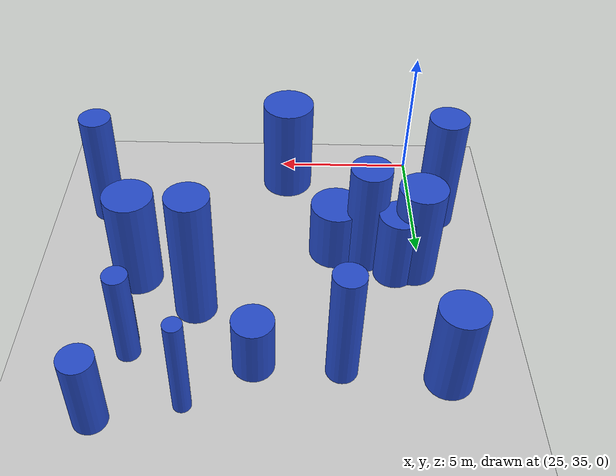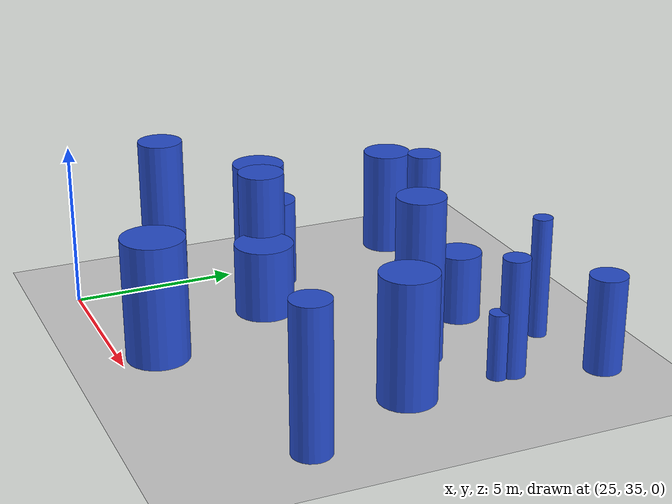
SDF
<sdf version="1.6">
 <world name="default">
  <model name="ground_plane">
   <static>1</static>
   <link name="link">
    <collision name="collision">
     <geometry><plane><normal>0 0 1</normal><size>100 100</size></plane></geometry>
     <surface><friction><ode><mu>100</mu><mu2>50</mu2></ode></friction></surface>
    </collision>
    <visual name="visual">
     <cast_shadows>0</cast_shadows>
     <geometry><plane><normal>0 0 1</normal><size>100 100</size></plane></geometry>
     <material>
      <script><uri>file://media/materials/scripts/gazebo.material</uri><name>Gazebo/Grey</name></script>
     </material>
    </visual>
   </link>
  </model>
  <model name="17">
   <static>0</static>
   <link name="link">
    <inertial>
     <mass>2</mass>
     <inertia><ixx>2.21319</ixx><ixy>0</ixy><ixz>0</ixz><iyy>2.21319</iyy><iyz>0</iyz><izz>0.160005</izz></inertia>
    </inertial>
    <collision name="collision">
     <geometry><cylinder><length>3.57759</length><radius>0.400007</radius></cylinder></geometry>
     <surface><contact><collide_without_contact>1</collide_without_contact></contact></surface>
    </collision>
    <visual name="visual">
     <geometry><cylinder><length>3.57759</length><radius>0.400007</radius></cylinder></geometry>
     <material>
      <script><uri>file://media/materials/scripts/gazebo.material</uri><name>Gazebo/Blue</name></script>
     </material>
    </visual>
    <gravity>0</gravity>
   </link>
   <pose>34.8299 44.982 1.78879 0 -0 0</pose>
  </model>
  <model name="43">
   <static>0</static>
   <link name="link">
    <inertial>
     <mass>2</mass>
     <inertia><ixx>1.55938</ixx><ixy>0</ixy><ixz>0</ixz><iyy>1.55938</iyy><iyz>0</iyz><izz>0.307875</izz></inertia>
    </inertial>
    <collision name="collision">
     <geometry><cylinder><length>2.9039</length><radius>0.554865</radius></cylinder></geometry>
     <surface><contact><collide_without_contact>1</collide_without_contact></contact></surface>
    </collision>
    <visual name="visual">
     <geometry><cylinder><length>2.9039</length><radius>0.554865</radius></cylinder></geometry>
     <material>
      <script><uri>file://media/materials/scripts/gazebo.material</uri><name>Gazebo/Blue</name></script>
     </material>
    </visual>
    <gravity>0</gravity>
   </link>
   <pose>35.5678 47.5327 1.45195 0 -0 0</pose>
  </model>
  <model name="53">
   <static>0</static>
   <link name="link">
    <inertial>
     <mass>2</mass>
     <inertia><ixx>2.77457</ixx><ixy>0</ixy><ixz>0</ixz><iyy>2.77457</iyy><iyz>0</iyz><izz>0.892205</izz></inertia>
    </inertial>
    <collision name="collision">
     <geometry><cylinder><length>3.73775</length><radius>0.944566</radius></cylinder></geometry>
     <surface><contact><collide_without_contact>1</collide_without_contact></contact></surface>
    </collision>
    <visual name="visual">
     <geometry><cylinder><length>3.73775</length><radius>0.944566</radius></cylinder></geometry>
     <material>
      <script><uri>file://media/materials/scripts/gazebo.material</uri><name>Gazebo/Blue</name></script>
     </material>
    </visual>
    <gravity>0</gravity>
   </link>
   <pose>29.7969 36.1188 1.86888 0 -0 0</pose>
  </model>
  <model name="71">
   <static>0</static>
   <link name="link">
    <inertial>
     <mass>2</mass>
     <inertia><ixx>1.25615</ixx><ixy>0</ixy><ixz>0</ixz><iyy>1.25615</iyy><iyz>0</iyz><izz>0.836986</izz></inertia>
    </inertial>
    <collision name="collision">
     <geometry><cylinder><length>2.24185</length><radius>0.914869</radius></cylinder></geometry>
     <surface><contact><collide_without_contact>1</collide_without_contact></contact></surface>
    </collision>
    <visual name="visual">
     <geometry><cylinder><length>2.24185</length><radius>0.914869</radius></cylinder></geometry>
     <material>
      <script><uri>file://media/materials/scripts/gazebo.material</uri><name>Gazebo/Blue</name></script>
     </material>
    </visual>
    <gravity>0</gravity>
   </link>
   <pose>28.0409 40.0976 1.12093 0 -0 0</pose>
  </model>
  <model name="94">
   <static>0</static>
   <link name="link">
    <inertial>
     <mass>2</mass>
     <inertia>
      <ixx>2.38254</ixx>
      <ixy>0</ixy>
      <ixz>0</ixz>
      <iyy>2.38254</iyy>
      <iyz>0</iyz>
      <izz>0.0875542</izz>
     </inertia>
    </inertial>
    <collision name="collision">
     <geometry><cylinder><length>3.74601</length><radius>0.295896</radius></cylinder></geometry>
     <surface><contact><collide_without_contact>1</collide_without_contact></contact></surface>
    </collision>
    <visual name="visual">
     <geometry><cylinder><length>3.74601</length><radius>0.295896</radius></cylinder></geometry>
     <material>
      <script><uri>file://media/materials/scripts/gazebo.material</uri><name>Gazebo/Blue</name></script>
     </material>
    </visual>
    <gravity>0</gravity>
   </link>
   <pose>32.8739 46.9525 1.87301 0 -0 0</pose>
  </model>
  <model name="101">
   <static>0</static>
   <link name="link">
    <inertial>
     <mass>2</mass>
     <inertia>
      <ixx>0.990845</ixx>
      <ixy>0</ixy>
      <ixz>0</ixz>
      <iyy>0.990845</iyy>
      <iyz>0</iyz>
      <izz>0.469471</izz>
     </inertia>
    </inertial>
    <collision name="collision">
     <geometry><cylinder><length>2.12994</length><radius>0.68518</radius></cylinder></geometry>
     <surface><contact><collide_without_contact>1</collide_without_contact></contact></surface>
    </collision>
    <visual name="visual">
     <geometry><cylinder><length>2.12994</length><radius>0.68518</radius></cylinder></geometry>
     <material>
      <script><uri>file://media/materials/scripts/gazebo.material</uri><name>Gazebo/Blue</name></script>
     </material>
    </visual>
    <gravity>0</gravity>
   </link>
   <pose>30.7646 45.382 1.06497 0 -0 0</pose>
  </model>
  <model name="112">
   <static>0</static>
   <link name="link">
    <inertial>
     <mass>2</mass>
     <inertia><ixx>3.3324</ixx><ixy>0</ixy><ixz>0</ixz><iyy>3.3324</iyy><iyz>0</iyz><izz>0.327172</izz></inertia>
    </inertial>
    <collision name="collision">
     <geometry><cylinder><length>4.36038</length><radius>0.571989</radius></cylinder></geometry>
     <surface><contact><collide_without_contact>1</collide_without_contact></contact></surface>
    </collision>
    <visual name="visual">
     <geometry><cylinder><length>4.36038</length><radius>0.571989</radius></cylinder></geometry>
     <material>
      <script><uri>file://media/materials/scripts/gazebo.material</uri><name>Gazebo/Blue</name></script>
     </material>
    </visual>
    <gravity>0</gravity>
   </link>
   <pose>36.6463 38.0929 2.18019 0 -0 0</pose>
  </model>
  <model name="128">
   <static>0</static>
   <link name="link">
    <inertial>
     <mass>2</mass>
     <inertia><ixx>3.73478</ixx><ixy>0</ixy><ixz>0</ixz><iyy>3.73478</iyy><iyz>0</iyz><izz>0.491925</izz></inertia>
    </inertial>
    <collision name="collision">
     <geometry><cylinder><length>4.57525</length><radius>0.701374</radius></cylinder></geometry>
     <surface><contact><collide_without_contact>1</collide_without_contact></contact></surface>
    </collision>
    <visual name="visual">
     <geometry><cylinder><length>4.57525</length><radius>0.701374</radius></cylinder></geometry>
     <material>
      <script><uri>file://media/materials/scripts/gazebo.material</uri><name>Gazebo/Blue</name></script>
     </material>
    </visual>
    <gravity>0</gravity>
   </link>
   <pose>24.164 38.1173 2.28762 0 -0 0</pose>
  </model>
  <model name="172">
   <static>0</static>
   <link name="link">
    <inertial>
     <mass>2</mass>
     <inertia><ixx>2.75287</ixx><ixy>0</ixy><ixz>0</ixz><iyy>2.75287</iyy><iyz>0</iyz><izz>0.722519</izz></inertia>
    </inertial>
    <collision name="collision">
     <geometry><cylinder><length>3.78809</length><radius>0.850011</radius></cylinder></geometry>
     <surface><contact><collide_without_contact>1</collide_without_contact></contact></surface>
    </collision>
    <visual name="visual">
     <geometry><cylinder><length>3.78809</length><radius>0.850011</radius></cylinder></geometry>
     <material>
      <script><uri>file://media/materials/scripts/gazebo.material</uri><name>Gazebo/Blue</name></script>
     </material>
    </visual>
    <gravity>0</gravity>
   </link>
   <pose>34.9871 41.6125 1.89405 0 -0 0</pose>
  </model>
  <model name="175">
   <static>0</static>
   <link name="link">
    <inertial>
     <mass>2</mass>
     <inertia><ixx>2.14915</ixx><ixy>0</ixy><ixz>0</ixz><iyy>2.14915</iyy><iyz>0</iyz><izz>0.591369</izz></inertia>
    </inertial>
    <collision name="collision">
     <geometry><cylinder><length>3.33479</length><radius>0.769005</radius></cylinder></geometry>
     <surface><contact><collide_without_contact>1</collide_without_contact></contact></surface>
    </collision>
    <visual name="visual">
     <geometry><cylinder><length>3.33479</length><radius>0.769005</radius></cylinder></geometry>
     <material>
      <script><uri>file://media/materials/scripts/gazebo.material</uri><name>Gazebo/Blue</name></script>
     </material>
    </visual>
    <gravity>0</gravity>
   </link>
   <pose>24.633 45.8262 1.66739 0 -0 0</pose>
  </model>
  <model name="202">
   <static>0</static>
   <link name="link">
    <inertial>
     <mass>2</mass>
     <inertia><ixx>3.10348</ixx><ixy>0</ixy><ixz>0</ixz><iyy>3.10348</iyy><iyz>0</iyz><izz>0.510542</izz></inertia>
    </inertial>
    <collision name="collision">
     <geometry><cylinder><length>4.13391</length><radius>0.714522</radius></cylinder></geometry>
     <surface><contact><collide_without_contact>1</collide_without_contact></contact></surface>
    </collision>
    <visual name="visual">
     <geometry><cylinder><length>4.13391</length><radius>0.714522</radius></cylinder></geometry>
     <material>
      <script><uri>file://media/materials/scripts/gazebo.material</uri><name>Gazebo/Blue</name></script>
     </material>
    </visual>
    <gravity>0</gravity>
   </link>
   <pose>26.9826 40.4433 2.06696 0 -0 0</pose>
  </model>
  <model name="203">
   <static>0</static>
   <link name="link">
    <inertial>
     <mass>2</mass>
     <inertia><ixx>2.72551</ixx><ixy>0</ixy><ixz>0</ixz><iyy>2.72551</iyy><iyz>0</iyz><izz>0.670454</izz></inertia>
    </inertial>
    <collision name="collision">
     <geometry><cylinder><length>3.78705</length><radius>0.818813</radius></cylinder></geometry>
     <surface><contact><collide_without_contact>1</collide_without_contact></contact></surface>
    </collision>
    <visual name="visual">
     <geometry><cylinder><length>3.78705</length><radius>0.818813</radius></cylinder></geometry>
     <material>
      <script><uri>file://media/materials/scripts/gazebo.material</uri><name>Gazebo/Blue</name></script>
     </material>
    </visual>
    <gravity>0</gravity>
   </link>
   <pose>25.2855 40.9859 1.89352 0 -0 0</pose>
  </model>
  <model name="205">
   <static>0</static>
   <link name="link">
    <inertial>
     <mass>2</mass>
     <inertia><ixx>1.55831</ixx><ixy>0</ixy><ixz>0</ixz><iyy>1.55831</iyy><iyz>0</iyz><izz>0.533917</izz></inertia>
    </inertial>
    <collision name="collision">
     <geometry><cylinder><length>2.78354</length><radius>0.730696</radius></cylinder></geometry>
     <surface><contact><collide_without_contact>1</collide_without_contact></contact></surface>
    </collision>
    <visual name="visual">
     <geometry><cylinder><length>2.78354</length><radius>0.730696</radius></cylinder></geometry>
     <material>
      <script><uri>file://media/materials/scripts/gazebo.material</uri><name>Gazebo/Blue</name></script>
     </material>
    </visual>
    <gravity>0</gravity>
   </link>
   <pose>25.9609 41.1948 1.39177 0 -0 0</pose>
  </model>
  <model name="209">
   <static>0</static>
   <link name="link">
    <inertial>
     <mass>2</mass>
     <inertia><ixx>0.71511</ixx><ixy>0</ixy><ixz>0</ixz><iyy>0.71511</iyy><iyz>0</iyz><izz>0.086054</izz></inertia>
    </inertial>
    <collision name="collision">
     <geometry><cylinder><length>2.00811</length><radius>0.29335</radius></cylinder></geometry>
     <surface><contact><collide_without_contact>1</collide_without_contact></contact></surface>
    </collision>
    <visual name="visual">
     <geometry><cylinder><length>2.00811</length><radius>0.29335</radius></cylinder></geometry>
     <material>
      <script><uri>file://media/materials/scripts/gazebo.material</uri><name>Gazebo/Blue</name></script>
     </material>
    </visual>
    <gravity>0</gravity>
   </link>
   <pose>34.8444 44.496 1.00405 0 -0 0</pose>
  </model>
  <model name="217">
   <static>0</static>
   <link name="link">
    <inertial>
     <mass>2</mass>
     <inertia><ixx>4.38609</ixx><ixy>0</ixy><ixz>0</ixz><iyy>4.38609</iyy><iyz>0</iyz><izz>0.511184</izz></inertia>
    </inertial>
    <collision name="collision">
     <geometry><cylinder><length>4.97825</length><radius>0.714971</radius></cylinder></geometry>
     <surface><contact><collide_without_contact>1</collide_without_contact></contact></surface>
    </collision>
    <visual name="visual">
     <geometry><cylinder><length>4.97825</length><radius>0.714971</radius></cylinder></geometry>
     <material>
      <script><uri>file://media/materials/scripts/gazebo.material</uri><name>Gazebo/Blue</name></script>
     </material>
    </visual>
    <gravity>0</gravity>
   </link>
   <pose>32.816 43.0186 2.48913 0 -0 0</pose>
  </model>
  <model name="234">
   <static>0</static>
   <link name="link">
    <inertial>
     <mass>2</mass>
     <inertia><ixx>3.28474</ixx><ixy>0</ixy><ixz>0</ixz><iyy>3.28474</iyy><iyz>0</iyz><izz>0.269996</izz></inertia>
    </inertial>
    <collision name="collision">
     <geometry><cylinder><length>4.34723</length><radius>0.519611</radius></cylinder></geometry>
     <surface><contact><collide_without_contact>1</collide_without_contact></contact></surface>
    </collision>
    <visual name="visual">
     <geometry><cylinder><length>4.34723</length><radius>0.519611</radius></cylinder></geometry>
     <material>
      <script><uri>file://media/materials/scripts/gazebo.material</uri><name>Gazebo/Blue</name></script>
     </material>
    </visual>
    <gravity>0</gravity>
   </link>
   <pose>27.9701 45.538 2.17362 0 -0 0</pose>
  </model>
 </world>
</sdf>
